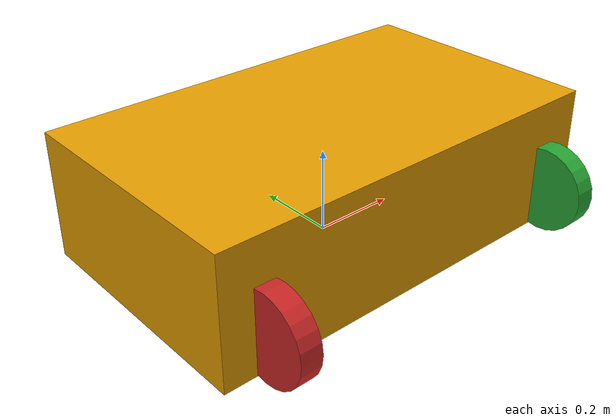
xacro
<?xml version="1.0"?>
<robot name="mecanum_drive_robot" xmlns:xacro="http://www.ros.org/wiki/xacro">

    <!-- Dimensions du corps -->
    <xacro:property name="body_link_x_dim" value="1.0"/>
    <xacro:property name="body_link_y_dim" value="0.6"/>
    <xacro:property name="body_link_z_dim" value="0.3"/>

    <!-- Dimensions des roues -->
    <xacro:property name="wheel_radius" value="0.1"/>
    <xacro:property name="wheel_width" value="0.05"/>

    <!-- Densité du matériau -->
    <xacro:property name="body_density" value="2710.0"/>
    <xacro:property name="wheel_density" value="2710.0"/>

    <!-- Masse du robot et des roues -->
    <xacro:property name="body_mass" value="${body_density * body_link_x_dim * body_link_y_dim * body_link_z_dim}"/>
    <xacro:property name="wheel_mass" value="${wheel_density * 3.14159265 * wheel_radius * wheel_radius * wheel_width}"/>

    <!-- Inertie des roues -->
    <xacro:property name="I_wheel" value="${(1/12) * wheel_mass * (3 * wheel_radius * wheel_radius + wheel_width * wheel_width)}"/>
    <xacro:property name="Iz_wheel" value="${0.5 * wheel_mass * wheel_radius * wheel_radius}"/>

    <!-- Définir les liens et les joints -->
    <link name="body_link">
        <visual>
            <geometry>
                <box size="${body_link_x_dim} ${body_link_y_dim} ${body_link_z_dim}"/>
            </geometry>
            <origin xyz="0 0 ${body_link_z_dim/2}" rpy="0 0 0"/>
        </visual>
        <collision>
            <geometry>
                <box size="${body_link_x_dim} ${body_link_y_dim} ${body_link_z_dim}"/>
            </geometry>
            <origin xyz="0 0 ${body_link_z_dim/2}" rpy="0 0 0"/>
        </collision>
        <inertial>
            <origin xyz="0 0 ${body_link_z_dim/2}" rpy="0 0 0"/>
            <mass value="${body_mass}"/>
            <inertia
                ixx="${(1/12)*body_mass*(body_link_y_dim*body_link_y_dim+body_link_z_dim*body_link_z_dim)}"
                ixy="0"
                ixz="0"
                iyy="${(1/12)*body_mass*(body_link_x_dim*body_link_x_dim+body_link_z_dim*body_link_z_dim)}"
                iyz="0"
                izz="${(1/12)*body_mass*(body_link_y_dim*body_link_y_dim+body_link_x_dim*body_link_x_dim)}"/>
        </inertial>
    </link>

    <!-- Définition d'une macro pour l'inertie des roues -->
    <xacro:macro name="wheel_inertial">
        <inertial>
            <origin xyz="0 0 0" rpy="0 0 0"/>
            <mass value="${wheel_mass}"/>
            <inertia
                ixx="${I_wheel}"
                ixy="0.0"
                ixz="0.0"
                iyy="${I_wheel}"
                iyz="0.0"
                izz="${Iz_wheel}"/>
        </inertial>
    </xacro:macro>

    <!-- Définition des roues et des joints -->
    <link name="wheel1_link">
        <visual>
            <geometry>
                <cylinder radius="${wheel_radius}" length="${wheel_width}"/>
            </geometry>
            <origin xyz="0 0 0" rpy="0 1.5708 0"/>
        </visual>
        <collision>
            <geometry>
                <cylinder radius="${wheel_radius}" length="${wheel_width}"/>
            </geometry>
            <origin xyz="0 0 0" rpy="0 1.5708 0"/>
        </collision>
        <xacro:wheel_inertial/>
    </link>

    <link name="wheel2_link">
        <visual>
            <geometry>
                <cylinder radius="${wheel_radius}" length="${wheel_width}"/>
            </geometry>
            <origin xyz="0 0 0" rpy="0 1.5708 0"/>
        </visual>
        <collision>
            <geometry>
                <cylinder radius="${wheel_radius}" length="${wheel_width}"/>
            </geometry>
            <origin xyz="0 0 0" rpy="0 1.5708 0"/>
        </collision>
        <xacro:wheel_inertial/>
    </link>

    <link name="wheel3_link">
        <visual>
            <geometry>
                <cylinder radius="${wheel_radius}" length="${wheel_width}"/>
            </geometry>
            <origin xyz="0 0 0" rpy="0 1.5708 0"/>
        </visual>
        <collision>
            <geometry>
                <cylinder radius="${wheel_radius}" length="${wheel_width}"/>
            </geometry>
            <origin xyz="0 0 0" rpy="0 1.5708 0"/>
        </collision>
        <xacro:wheel_inertial/>
    </link>

    <link name="wheel4_link">
        <visual>
            <geometry>
                <cylinder radius="${wheel_radius}" length="${wheel_width}"/>
            </geometry>
            <origin xyz="0 0 0" rpy="0 1.5708 0"/>
        </visual>
        <collision>
            <geometry>
                <cylinder radius="${wheel_radius}" length="${wheel_width}"/>
            </geometry>
            <origin xyz="0 0 0" rpy="0 1.5708 0"/>
        </collision>
        <xacro:wheel_inertial/>
    </link>

    <!-- Joints des roues -->
    <joint name="wheel1_joint" type="continuous">
        <parent link="body_link"/>
        <child link="wheel1_link"/>
        <origin xyz="${body_link_x_dim/2 - wheel_radius} ${body_link_y_dim/2 + wheel_width/2} ${wheel_radius}" rpy="0 0 0"/>
        <axis xyz="0 1 0"/>
        <limit effort="1000" velocity="1000"/>
        <dynamics damping="1.0" friction="1.0"/>
    </joint>

    <joint name="wheel2_joint" type="continuous">
        <parent link="body_link"/>
        <child link="wheel2_link"/>
        <origin xyz="${body_link_x_dim/2 - wheel_radius} ${-body_link_y_dim/2 - wheel_width/2} ${wheel_radius}" rpy="0 0 0"/>
        <axis xyz="0 1 0"/>
        <limit effort="1000" velocity="1000"/>
        <dynamics damping="1.0" friction="1.0"/>
    </joint>

    <joint name="wheel3_joint" type="continuous">
        <parent link="body_link"/>
        <child link="wheel3_link"/>
        <origin xyz="${-body_link_x_dim/2 + wheel_radius} ${body_link_y_dim/2 + wheel_width/2} ${wheel_radius}" rpy="0 0 0"/>
        <axis xyz="0 1 0"/>
        <limit effort="1000" velocity="1000"/>
        <dynamics damping="1.0" friction="1.0"/>
    </joint>

    <joint name="wheel4_joint" type="continuous">
        <parent link="body_link"/>
        <child link="wheel4_link"/>
        <origin xyz="${-body_link_x_dim/2 + wheel_radius} ${-body_link_y_dim/2 - wheel_width/2} ${wheel_radius}" rpy="0 0 0"/>
        <axis xyz="0 1 0"/>
        <limit effort="1000" velocity="1000"/>
        <dynamics damping="1.0" friction="1.0"/>
    </joint>

    <!-- Matériaux et friction -->
    <gazebo reference="wheel1_link">
        <material>Gazebo/Blue</material>
        <kp>1000000.0</kp>
        <kd>100.0</kd>
        <mu1>0.9</mu1>
        <mu2>0.9</mu2>
    </gazebo>

    <gazebo reference="wheel2_link">
        <material>Gazebo/Green</material>
        <kp>1000000.0</kp>
        <kd>100.0</kd>
        <mu1>0.9</mu1>
        <mu2>0.9</mu2>
    </gazebo>

    <gazebo reference="wheel3_link">
        <material>Gazebo/Yellow</material>
        <kp>1000000.0</kp>
        <kd>100.0</kd>
        <mu1>0.9</mu1>
        <mu2>0.9</mu2>
    </gazebo>

    <gazebo reference="wheel4_link">
        <material>Gazebo/Red</material>
        <kp>1000000.0</kp>
        <kd>100.0</kd>
        <mu1>0.9</mu1>
        <mu2>0.9</mu2>
    </gazebo>

    <!-- Include the file that defines extra Gazebo options and motion control driver -->
    <xacro:include filename="$(find robot_model_one_pkg)/urdf/robot.gazebo" />
</robot>
